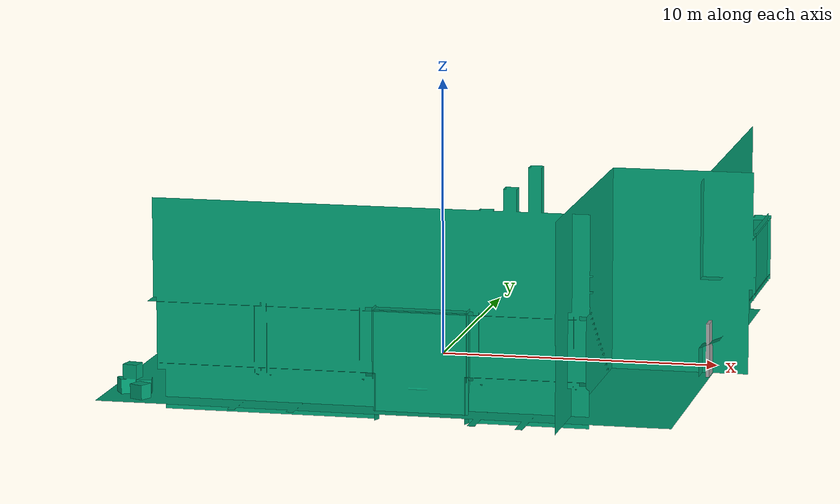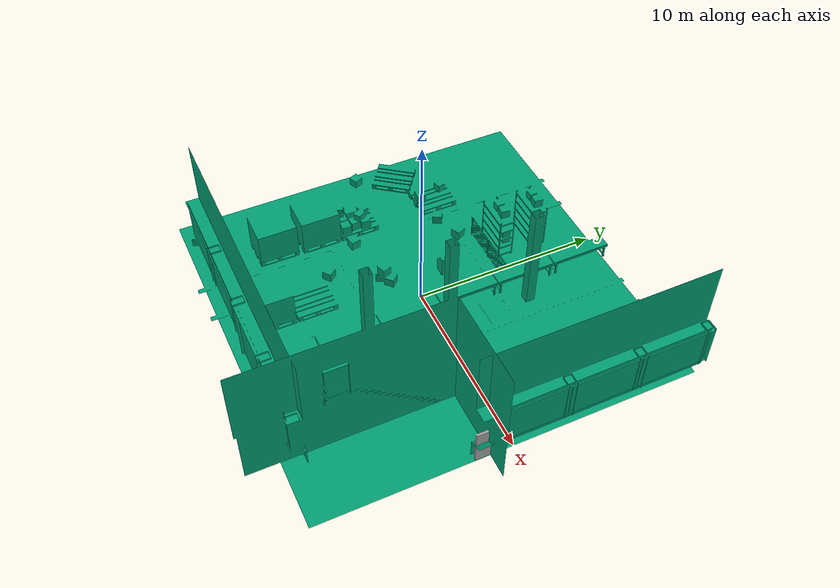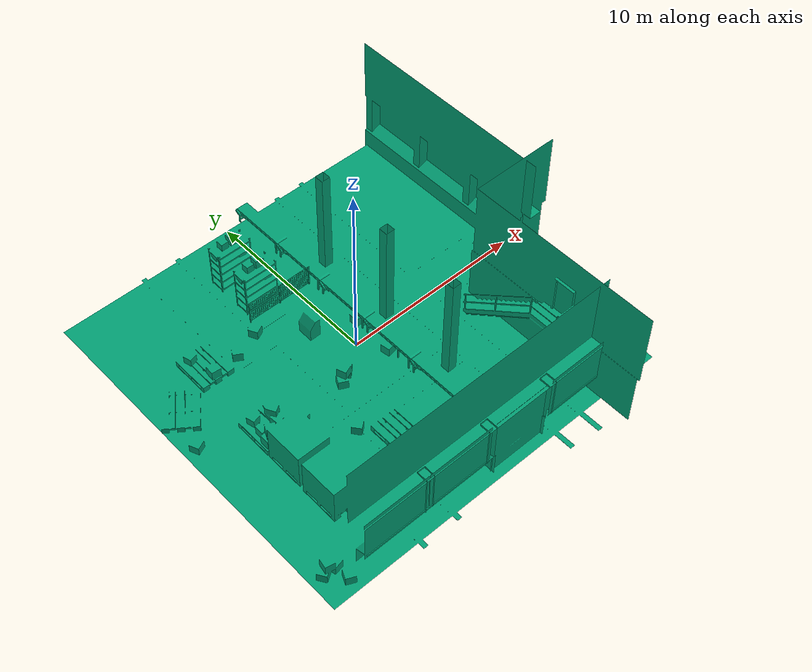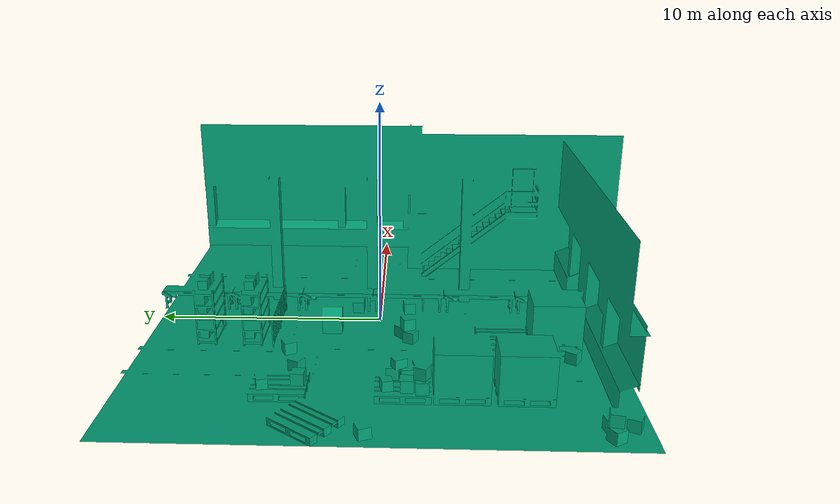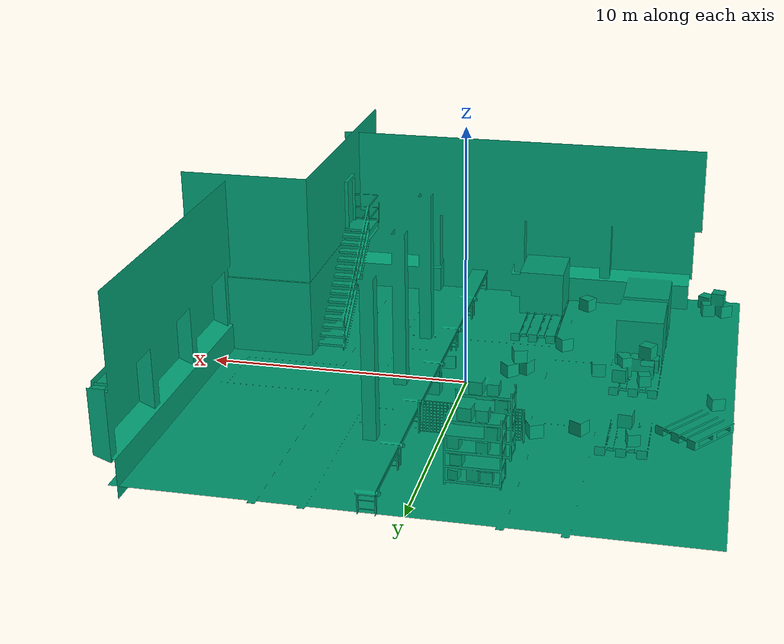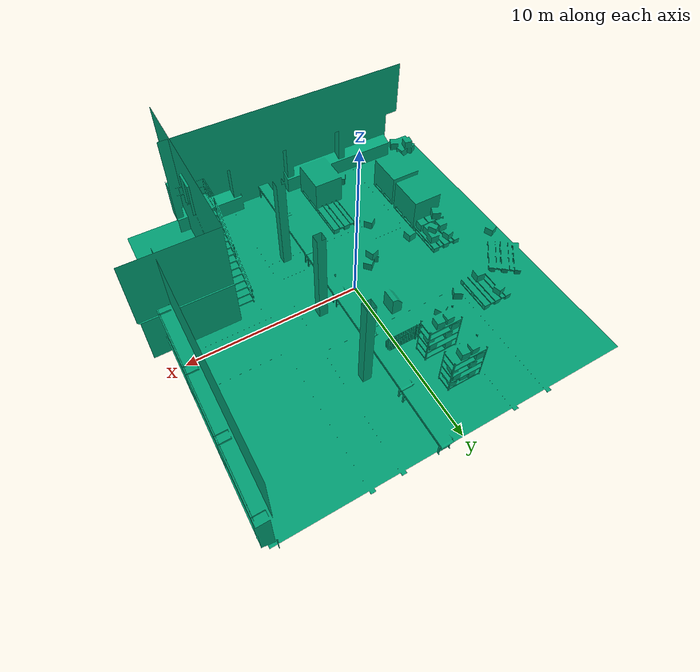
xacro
<?xml version="1.0" ?>
<robot name="robot" xmlns:xacro="http://www.ros.org/wiki/xacro">

  <!-- world -->
  <link name="world" />

  <!-- Joints -->
  <joint name="world_interface_to_world" type="fixed">
    <parent link="world" />
    <child link="world_interface" />
  </joint>

  <!-- workcell -->
  <xacro:include filename="$(find ros_industrial_support)/urdf/workcell/workcell.urdf.xacro"/>
  <xacro:workcell_urdf workcell_parent="world_interface"/>

</robot>

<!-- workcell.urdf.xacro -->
<robot name="workcell_urdf" xmlns:xacro="http://www.ros.org/wiki/xacro">
    <xacro:macro name="workcell_urdf" params="workcell_parent">
    <xacro:property name="mesh_path" value="file://$(find ros_industrial_support)"/>

    <!-- Links -->
    <link name="world_interface"/>
    <link name="workcell">
      <visual>
        <geometry>
          <mesh filename="${mesh_path}/meshes/workcell/visual/workcell.dae"/>
        </geometry>
      </visual>
      <collision>
        <geometry>
          <mesh filename="${mesh_path}/meshes/workcell/collision/workcell.dae"/>
        </geometry>
      </collision>
      <inertial>
        <inertia ixx="1.0" ixy="0" ixz="0"
                 iyy="1.0" iyz="0"
                 izz="1.0" />
        <mass value="100" />
      </inertial>
    </link>

    <joint name="workcell_to_world_interface" type="fixed">
      <parent link="${workcell_parent}" />
      <child link="workcell" />
      <origin xyz="0 0 0.0" rpy="0 0 ${radians(90)}" />
    </joint>

  </xacro:macro>
</robot>
